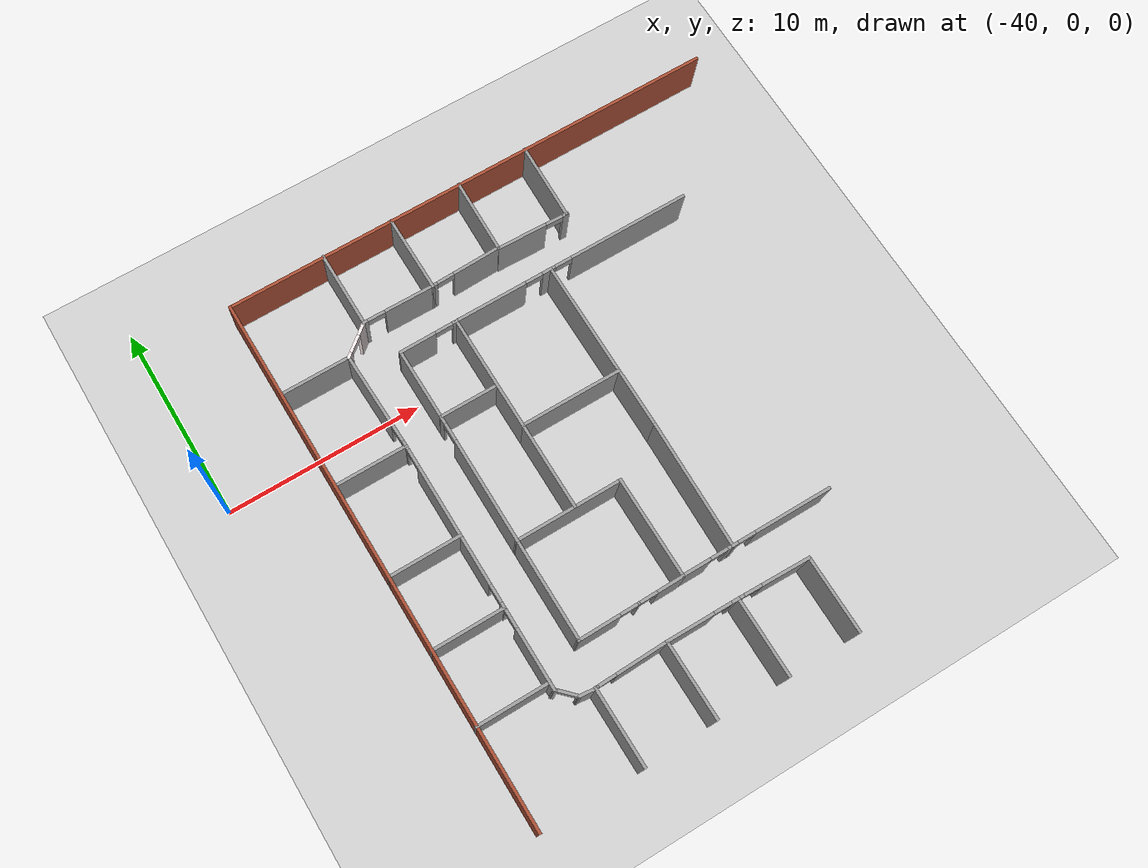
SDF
<sdf version="1.7">
 <world name="default">
  <model name="ground_plane">
   <static>1</static>
   <link name="link">
    <collision name="collision">
     <geometry><plane><normal>0 0 1</normal><size>100 100</size></plane></geometry>
     <surface>
      <contact><collide_bitmask>65535</collide_bitmask></contact>
      <friction><ode><mu>100</mu><mu2>50</mu2></ode></friction>
     </surface>
    </collision>
    <visual name="visual">
     <cast_shadows>0</cast_shadows>
     <geometry><plane><normal>0 0 1</normal><size>100 100</size></plane></geometry>
     <material>
      <script><uri>file://media/materials/scripts/gazebo.material</uri><name>Gazebo/Grey</name></script>
     </material>
    </visual>
   </link>
  </model>
  <model name="OEC_2F_B">
   <pose>0.733156 -0.285133 0 0 -0 0</pose>
   <link name="Wall_102">
    <pose>-22.0485 4.31707 0 0 -0 3.11269</pose>
    <visual name="Wall_102_Visual_0">
     <pose>-1.73863 0 1.25 0 -0 0</pose>
     <geometry><box><size>0.333949 0.15 2.5</size></box></geometry>
     <material>
      <script><uri>file://media/materials/scripts/gazebo.material</uri><name>Gazebo/Grey</name></script>
      <ambient>1 1 1 1</ambient>
     </material>
     <meta><layer>0</layer></meta>
    </visual>
    <collision name="Wall_102_Collision_0">
     <geometry><box><size>0.333949 0.15 2.5</size></box></geometry>
     <pose>-1.73863 0 1.25 0 -0 0</pose>
    </collision>
    <visual name="Wall_102_Visual_1">
     <pose>0.616975 0 1.25 0 -0 0</pose>
     <geometry><box><size>2.57727 0.15 2.5</size></box></geometry>
     <material>
      <script><uri>file://media/materials/scripts/gazebo.material</uri><name>Gazebo/Grey</name></script>
      <ambient>1 1 1 1</ambient>
     </material>
     <meta><layer>0</layer></meta>
    </visual>
    <collision name="Wall_102_Collision_1">
     <geometry><box><size>2.57727 0.15 2.5</size></box></geometry>
     <pose>0.616975 0 1.25 0 -0 0</pose>
    </collision>
    <visual name="Wall_102_Visual_2">
     <pose>-1.12166 0 2.25 0 -0 0</pose>
     <geometry><box><size>0.9 0.15 0.5</size></box></geometry>
     <material>
      <script><uri>file://media/materials/scripts/gazebo.material</uri><name>Gazebo/Grey</name></script>
      <ambient>1 1 1 1</ambient>
     </material>
     <meta><layer>0</layer></meta>
    </visual>
    <collision name="Wall_102_Collision_2">
     <geometry><box><size>0.9 0.15 0.5</size></box></geometry>
     <pose>-1.12166 0 2.25 0 -0 0</pose>
    </collision>
   </link>
   <link name="Wall_104">
    <pose>-25.7323 4.36122 0 0 -0 -3.11102</pose>
    <visual name="Wall_104_Visual_0">
     <pose>-0.610442 0 1.25 0 -0 0</pose>
     <geometry><box><size>2.54565 0.15 2.5</size></box></geometry>
     <material>
      <script><uri>file://media/materials/scripts/gazebo.material</uri><name>Gazebo/Grey</name></script>
      <ambient>1 1 1 1</ambient>
     </material>
     <meta><layer>0</layer></meta>
    </visual>
    <collision name="Wall_104_Collision_0">
     <geometry><box><size>2.54565 0.15 2.5</size></box></geometry>
     <pose>-0.610442 0 1.25 0 -0 0</pose>
    </collision>
    <visual name="Wall_104_Visual_1">
     <pose>1.72283 0 1.25 0 -0 0</pose>
     <geometry><box><size>0.320884 0.15 2.5</size></box></geometry>
     <material>
      <script><uri>file://media/materials/scripts/gazebo.material</uri><name>Gazebo/Grey</name></script>
      <ambient>1 1 1 1</ambient>
     </material>
     <meta><layer>0</layer></meta>
    </visual>
    <collision name="Wall_104_Collision_1">
     <geometry><box><size>0.320884 0.15 2.5</size></box></geometry>
     <pose>1.72283 0 1.25 0 -0 0</pose>
    </collision>
    <visual name="Wall_104_Visual_2">
     <pose>1.11238 0 2.25 0 -0 0</pose>
     <geometry><box><size>0.9 0.15 0.5</size></box></geometry>
     <material>
      <script><uri>file://media/materials/scripts/gazebo.material</uri><name>Gazebo/Grey</name></script>
      <ambient>1 1 1 1</ambient>
     </material>
     <meta><layer>0</layer></meta>
    </visual>
    <collision name="Wall_104_Collision_2">
     <geometry><box><size>0.9 0.15 0.5</size></box></geometry>
     <pose>1.11238 0 2.25 0 -0 0</pose>
    </collision>
   </link>
   <link name="Wall_105">
    <pose>-29.3587 4.32345 0 0 -0 3.13198</pose>
    <visual name="Wall_105_Visual_0">
     <pose>-0.586662 0 1.25 0 -0 0</pose>
     <geometry><box><size>2.61478 0.15 2.5</size></box></geometry>
     <material>
      <script><uri>file://media/materials/scripts/gazebo.material</uri><name>Gazebo/Grey</name></script>
      <ambient>1 1 1 1</ambient>
     </material>
     <meta><layer>0</layer></meta>
    </visual>
    <collision name="Wall_105_Collision_0">
     <geometry><box><size>2.61478 0.15 2.5</size></box></geometry>
     <pose>-0.586662 0 1.25 0 -0 0</pose>
    </collision>
    <visual name="Wall_105_Visual_1">
     <pose>1.75739 0 1.25 0 -0 0</pose>
     <geometry><box><size>0.273323 0.15 2.5</size></box></geometry>
     <material>
      <script><uri>file://media/materials/scripts/gazebo.material</uri><name>Gazebo/Grey</name></script>
      <ambient>1 1 1 1</ambient>
     </material>
     <meta><layer>0</layer></meta>
    </visual>
    <collision name="Wall_105_Collision_1">
     <geometry><box><size>0.273323 0.15 2.5</size></box></geometry>
     <pose>1.75739 0 1.25 0 -0 0</pose>
    </collision>
    <visual name="Wall_105_Visual_2">
     <pose>1.17073 0 2.25 0 -0 0</pose>
     <geometry><box><size>0.9 0.15 0.5</size></box></geometry>
     <material>
      <script><uri>file://media/materials/scripts/gazebo.material</uri><name>Gazebo/Grey</name></script>
      <ambient>1 1 1 1</ambient>
     </material>
     <meta><layer>0</layer></meta>
    </visual>
    <collision name="Wall_105_Collision_2">
     <geometry><box><size>0.9 0.15 0.5</size></box></geometry>
     <pose>1.17073 0 2.25 0 -0 0</pose>
    </collision>
   </link>
   <link name="Wall_107">
    <pose>-31.8931 3.77384 0 0 -0 -2.47133</pose>
    <visual name="Wall_107_Visual_0">
     <pose>-0.62608 0 1.25 0 -0 0</pose>
     <geometry><box><size>0.723685 0.15 2.5</size></box></geometry>
     <material>
      <script><uri>file://media/materials/scripts/gazebo.material</uri><name>Gazebo/Grey</name></script>
      <ambient>0.960784 0.905882 0.905882 1</ambient>
     </material>
     <meta><layer>0</layer></meta>
    </visual>
    <collision name="Wall_107_Collision_0">
     <geometry><box><size>0.723685 0.15 2.5</size></box></geometry>
     <pose>-0.62608 0 1.25 0 -0 0</pose>
    </collision>
    <visual name="Wall_107_Visual_1">
     <pose>0.811843 0 1.25 0 -0 0</pose>
     <geometry><box><size>0.352159 0.15 2.5</size></box></geometry>
     <material>
      <script><uri>file://media/materials/scripts/gazebo.material</uri><name>Gazebo/Grey</name></script>
      <ambient>0.960784 0.905882 0.905882 1</ambient>
     </material>
     <meta><layer>0</layer></meta>
    </visual>
    <collision name="Wall_107_Collision_1">
     <geometry><box><size>0.352159 0.15 2.5</size></box></geometry>
     <pose>0.811843 0 1.25 0 -0 0</pose>
    </collision>
    <visual name="Wall_107_Visual_2">
     <pose>0.185763 0 2.25 0 -0 0</pose>
     <geometry><box><size>0.9 0.15 0.5</size></box></geometry>
     <material>
      <script><uri>file://media/materials/scripts/gazebo.material</uri><name>Gazebo/Grey</name></script>
      <ambient>0.960784 0.905882 0.905882 1</ambient>
     </material>
     <meta><layer>0</layer></meta>
    </visual>
    <collision name="Wall_107_Collision_2">
     <geometry><box><size>0.9 0.15 0.5</size></box></geometry>
     <pose>0.185763 0 2.25 0 -0 0</pose>
    </collision>
   </link>
   <link name="Wall_111">
    <pose>-18.7093 2.23651 0 0 -0 3.14159</pose>
    <visual name="Wall_111_Visual_0">
     <pose>-0.604339 0 1.25 0 -0 0</pose>
     <geometry><box><size>6.29132 0.15 2.5</size></box></geometry>
     <material>
      <script><uri>file://media/materials/scripts/gazebo.material</uri><name>Gazebo/Grey</name></script>
      <ambient>1 1 1 1</ambient>
     </material>
     <meta><layer>0</layer></meta>
    </visual>
    <collision name="Wall_111_Collision_0">
     <geometry><box><size>6.29132 0.15 2.5</size></box></geometry>
     <pose>-0.604339 0 1.25 0 -0 0</pose>
    </collision>
    <visual name="Wall_111_Visual_1">
     <pose>3.59566 0 1.25 0 -0 0</pose>
     <geometry><box><size>0.308678 0.15 2.5</size></box></geometry>
     <material>
      <script><uri>file://media/materials/scripts/gazebo.material</uri><name>Gazebo/Grey</name></script>
      <ambient>1 1 1 1</ambient>
     </material>
     <meta><layer>0</layer></meta>
    </visual>
    <collision name="Wall_111_Collision_1">
     <geometry><box><size>0.308678 0.15 2.5</size></box></geometry>
     <pose>3.59566 0 1.25 0 -0 0</pose>
    </collision>
    <visual name="Wall_111_Visual_2">
     <pose>2.99132 0 2.25 0 -0 0</pose>
     <geometry><box><size>0.9 0.15 0.5</size></box></geometry>
     <material>
      <script><uri>file://media/materials/scripts/gazebo.material</uri><name>Gazebo/Grey</name></script>
      <ambient>1 1 1 1</ambient>
     </material>
     <meta><layer>0</layer></meta>
    </visual>
    <collision name="Wall_111_Collision_2">
     <geometry><box><size>0.9 0.15 0.5</size></box></geometry>
     <pose>2.99132 0 2.25 0 -0 0</pose>
    </collision>
   </link>
   <link name="Wall_113">
    <pose>-24.9343 2.23651 0 0 -0 3.14159</pose>
    <visual name="Wall_113_Visual_0">
     <pose>-2.35854 0 1.25 0 -0 0</pose>
     <geometry><box><size>0.532918 0.15 2.5</size></box></geometry>
     <material>
      <script><uri>file://media/materials/scripts/gazebo.material</uri><name>Gazebo/Grey</name></script>
      <ambient>1 1 1 1</ambient>
     </material>
     <meta><layer>0</layer></meta>
    </visual>
    <collision name="Wall_113_Collision_0">
     <geometry><box><size>0.532918 0.15 2.5</size></box></geometry>
     <pose>-2.35854 0 1.25 0 -0 0</pose>
    </collision>
    <visual name="Wall_113_Visual_1">
     <pose>0.716459 0 1.25 0 -0 0</pose>
     <geometry><box><size>3.81708 0.15 2.5</size></box></geometry>
     <material>
      <script><uri>file://media/materials/scripts/gazebo.material</uri><name>Gazebo/Grey</name></script>
      <ambient>1 1 1 1</ambient>
     </material>
     <meta><layer>0</layer></meta>
    </visual>
    <collision name="Wall_113_Collision_1">
     <geometry><box><size>3.81708 0.15 2.5</size></box></geometry>
     <pose>0.716459 0 1.25 0 -0 0</pose>
    </collision>
    <visual name="Wall_113_Visual_2">
     <pose>-1.64208 0 2.25 0 -0 0</pose>
     <geometry><box><size>0.9 0.15 0.5</size></box></geometry>
     <material>
      <script><uri>file://media/materials/scripts/gazebo.material</uri><name>Gazebo/Grey</name></script>
      <ambient>1 1 1 1</ambient>
     </material>
     <meta><layer>0</layer></meta>
    </visual>
    <collision name="Wall_113_Collision_2">
     <geometry><box><size>0.9 0.15 0.5</size></box></geometry>
     <pose>-1.64208 0 2.25 0 -0 0</pose>
    </collision>
   </link>
   <link name="Wall_115">
    <pose>-28.9692 2.22462 0 0 -0 -3.13359</pose>
    <visual name="Wall_115_Visual_0">
     <pose>-1.41288 0 1.25 0 -0 0</pose>
     <geometry><box><size>0.294093 0.15 2.5</size></box></geometry>
     <material>
      <script><uri>file://media/materials/scripts/gazebo.material</uri><name>Gazebo/Grey</name></script>
      <ambient>1 1 1 1</ambient>
     </material>
     <meta><layer>0</layer></meta>
    </visual>
    <collision name="Wall_115_Collision_0">
     <geometry><box><size>0.294093 0.15 2.5</size></box></geometry>
     <pose>-1.41288 0 1.25 0 -0 0</pose>
    </collision>
    <visual name="Wall_115_Visual_1">
     <pose>0.597047 0 1.25 0 -0 0</pose>
     <geometry><box><size>1.92576 0.15 2.5</size></box></geometry>
     <material>
      <script><uri>file://media/materials/scripts/gazebo.material</uri><name>Gazebo/Grey</name></script>
      <ambient>1 1 1 1</ambient>
     </material>
     <meta><layer>0</layer></meta>
    </visual>
    <collision name="Wall_115_Collision_1">
     <geometry><box><size>1.92576 0.15 2.5</size></box></geometry>
     <pose>0.597047 0 1.25 0 -0 0</pose>
    </collision>
    <visual name="Wall_115_Visual_2">
     <pose>-0.815835 0 2.25 0 -0 0</pose>
     <geometry><box><size>0.9 0.15 0.5</size></box></geometry>
     <material>
      <script><uri>file://media/materials/scripts/gazebo.material</uri><name>Gazebo/Grey</name></script>
      <ambient>1 1 1 1</ambient>
     </material>
     <meta><layer>0</layer></meta>
    </visual>
    <collision name="Wall_115_Collision_2">
     <geometry><box><size>0.9 0.15 0.5</size></box></geometry>
     <pose>-0.815835 0 2.25 0 -0 0</pose>
    </collision>
   </link>
   <link name="Wall_122">
    <collision name="Wall_122_Collision">
     <geometry><box><size>9 0.15 2.5</size></box></geometry>
     <pose>0 0 1.25 0 -0 0</pose>
    </collision>
    <visual name="Wall_122_Visual">
     <pose>0 0 1.25 0 -0 0</pose>
     <geometry><box><size>9 0.15 2.5</size></box></geometry>
     <material>
      <script><uri>file://media/materials/scripts/gazebo.material</uri><name>Gazebo/Grey</name></script>
      <ambient>1 1 1 1</ambient>
     </material>
     <meta><layer>0</layer></meta>
    </visual>
    <pose>-22.3843 -2.1885 0 0 -0 -1.5708</pose>
   </link>
   <link name="Wall_124">
    <collision name="Wall_124_Collision">
     <geometry><box><size>6 0.15 2.5</size></box></geometry>
     <pose>0 0 1.25 0 -0 0</pose>
    </collision>
    <visual name="Wall_124_Visual">
     <pose>0 0 1.25 0 -0 0</pose>
     <geometry><box><size>6 0.15 2.5</size></box></geometry>
     <material>
      <script><uri>file://media/materials/scripts/gazebo.material</uri><name>Gazebo/Grey</name></script>
      <ambient>1 1 1 1</ambient>
     </material>
     <meta><layer>0</layer></meta>
    </visual>
    <pose>-27.4843 -0.688495 0 0 -0 -1.5708</pose>
   </link>
   <link name="Wall_130">
    <collision name="Wall_130_Collision">
     <geometry><box><size>5.25 0.15 2.5</size></box></geometry>
     <pose>0 0 1.25 0 -0 0</pose>
    </collision>
    <visual name="Wall_130_Visual">
     <pose>0 0 1.25 0 -0 0</pose>
     <geometry><box><size>5.25 0.15 2.5</size></box></geometry>
     <material>
      <script><uri>file://media/materials/scripts/gazebo.material</uri><name>Gazebo/Grey</name></script>
      <ambient>1 1 1 1</ambient>
     </material>
     <meta><layer>0</layer></meta>
    </visual>
    <pose>-24.9343 -3.61349 0 0 -0 0</pose>
   </link>
   <link name="Wall_132">
    <pose>-32.5386 0.717956 0 0 -0 -1.54269</pose>
    <visual name="Wall_132_Visual_0">
     <pose>-0.617333 0 1.25 0 -0 0</pose>
     <geometry><box><size>3.89487 0.15 2.5</size></box></geometry>
     <material>
      <script><uri>file://media/materials/scripts/gazebo.material</uri><name>Gazebo/Grey</name></script>
      <ambient>1 1 1 1</ambient>
     </material>
     <meta><layer>0</layer></meta>
    </visual>
    <collision name="Wall_132_Collision_0">
     <geometry><box><size>3.89487 0.15 2.5</size></box></geometry>
     <pose>-0.617333 0 1.25 0 -0 0</pose>
    </collision>
    <visual name="Wall_132_Visual_1">
     <pose>2.39744 0 1.25 0 -0 0</pose>
     <geometry><box><size>0.334666 0.15 2.5</size></box></geometry>
     <material>
      <script><uri>file://media/materials/scripts/gazebo.material</uri><name>Gazebo/Grey</name></script>
      <ambient>1 1 1 1</ambient>
     </material>
     <meta><layer>0</layer></meta>
    </visual>
    <collision name="Wall_132_Collision_1">
     <geometry><box><size>0.334666 0.15 2.5</size></box></geometry>
     <pose>2.39744 0 1.25 0 -0 0</pose>
    </collision>
    <visual name="Wall_132_Visual_2">
     <pose>1.7801 0 2.25 0 -0 0</pose>
     <geometry><box><size>0.9 0.15 0.5</size></box></geometry>
     <material>
      <script><uri>file://media/materials/scripts/gazebo.material</uri><name>Gazebo/Grey</name></script>
      <ambient>1 1 1 1</ambient>
     </material>
     <meta><layer>0</layer></meta>
    </visual>
    <collision name="Wall_132_Collision_2">
     <geometry><box><size>0.9 0.15 0.5</size></box></geometry>
     <pose>1.7801 0 2.25 0 -0 0</pose>
    </collision>
   </link>
   <link name="Wall_134">
    <pose>-32.4686 -4.16702 0 0 -0 -1.5708</pose>
    <visual name="Wall_134_Visual_0">
     <pose>-2.33578 0 1.25 0 -0 0</pose>
     <geometry><box><size>0.270827 0.15 2.5</size></box></geometry>
     <material>
      <script><uri>file://media/materials/scripts/gazebo.material</uri><name>Gazebo/Grey</name></script>
      <ambient>1 1 1 1</ambient>
     </material>
     <meta><layer>0</layer></meta>
    </visual>
    <collision name="Wall_134_Collision_0">
     <geometry><box><size>0.270827 0.15 2.5</size></box></geometry>
     <pose>-2.33578 0 1.25 0 -0 0</pose>
    </collision>
    <visual name="Wall_134_Visual_1">
     <pose>0.585414 0 1.25 0 -0 0</pose>
     <geometry><box><size>3.77156 0.15 2.5</size></box></geometry>
     <material>
      <script><uri>file://media/materials/scripts/gazebo.material</uri><name>Gazebo/Grey</name></script>
      <ambient>1 1 1 1</ambient>
     </material>
     <meta><layer>0</layer></meta>
    </visual>
    <collision name="Wall_134_Collision_1">
     <geometry><box><size>3.77156 0.15 2.5</size></box></geometry>
     <pose>0.585414 0 1.25 0 -0 0</pose>
    </collision>
    <visual name="Wall_134_Visual_2">
     <pose>-1.75037 0 2.25 0 -0 0</pose>
     <geometry><box><size>0.9 0.15 0.5</size></box></geometry>
     <material>
      <script><uri>file://media/materials/scripts/gazebo.material</uri><name>Gazebo/Grey</name></script>
      <ambient>1 1 1 1</ambient>
     </material>
     <meta><layer>0</layer></meta>
    </visual>
    <collision name="Wall_134_Collision_2">
     <geometry><box><size>0.9 0.15 0.5</size></box></geometry>
     <pose>-1.75037 0 2.25 0 -0 0</pose>
    </collision>
   </link>
   <link name="Wall_135">
    <pose>-32.4686 -8.39202 0 0 -0 -1.5708</pose>
    <visual name="Wall_135_Visual_0">
     <pose>-0.617157 0 1.25 0 -0 0</pose>
     <geometry><box><size>2.5733 0.15 2.5</size></box></geometry>
     <material>
      <script><uri>file://media/materials/scripts/gazebo.material</uri><name>Gazebo/Grey</name></script>
      <ambient>1 1 1 1</ambient>
     </material>
     <meta><layer>0</layer></meta>
    </visual>
    <collision name="Wall_135_Collision_0">
     <geometry><box><size>2.5733 0.15 2.5</size></box></geometry>
     <pose>-0.617157 0 1.25 0 -0 0</pose>
    </collision>
    <visual name="Wall_135_Visual_1">
     <pose>1.73665 0 1.25 0 -0 0</pose>
     <geometry><box><size>0.334313 0.15 2.5</size></box></geometry>
     <material>
      <script><uri>file://media/materials/scripts/gazebo.material</uri><name>Gazebo/Grey</name></script>
      <ambient>1 1 1 1</ambient>
     </material>
     <meta><layer>0</layer></meta>
    </visual>
    <collision name="Wall_135_Collision_1">
     <geometry><box><size>0.334313 0.15 2.5</size></box></geometry>
     <pose>1.73665 0 1.25 0 -0 0</pose>
    </collision>
    <visual name="Wall_135_Visual_2">
     <pose>1.11949 0 2.25 0 -0 0</pose>
     <geometry><box><size>0.9 0.15 0.5</size></box></geometry>
     <material>
      <script><uri>file://media/materials/scripts/gazebo.material</uri><name>Gazebo/Grey</name></script>
      <ambient>1 1 1 1</ambient>
     </material>
     <meta><layer>0</layer></meta>
    </visual>
    <collision name="Wall_135_Collision_2">
     <geometry><box><size>0.9 0.15 0.5</size></box></geometry>
     <pose>1.11949 0 2.25 0 -0 0</pose>
    </collision>
   </link>
   <link name="Wall_137">
    <pose>-32.4686 -12.2458 0 0 -0 -1.5708</pose>
    <visual name="Wall_137_Visual_0">
     <pose>-2.00493 0 1.25 0 -0 0</pose>
     <geometry><box><size>0.190132 0.15 2.5</size></box></geometry>
     <material>
      <script><uri>file://media/materials/scripts/gazebo.material</uri><name>Gazebo/Grey</name></script>
      <ambient>1 1 1 1</ambient>
     </material>
     <meta><layer>0</layer></meta>
    </visual>
    <collision name="Wall_137_Collision_0">
     <geometry><box><size>0.190132 0.15 2.5</size></box></geometry>
     <pose>-2.00493 0 1.25 0 -0 0</pose>
    </collision>
    <visual name="Wall_137_Visual_1">
     <pose>0.545066 0 1.25 0 -0 0</pose>
     <geometry><box><size>3.10987 0.15 2.5</size></box></geometry>
     <material>
      <script><uri>file://media/materials/scripts/gazebo.material</uri><name>Gazebo/Grey</name></script>
      <ambient>1 1 1 1</ambient>
     </material>
     <meta><layer>0</layer></meta>
    </visual>
    <collision name="Wall_137_Collision_1">
     <geometry><box><size>3.10987 0.15 2.5</size></box></geometry>
     <pose>0.545066 0 1.25 0 -0 0</pose>
    </collision>
    <visual name="Wall_137_Visual_2">
     <pose>-1.45987 0 2.25 0 -0 0</pose>
     <geometry><box><size>0.9 0.15 0.5</size></box></geometry>
     <material>
      <script><uri>file://media/materials/scripts/gazebo.material</uri><name>Gazebo/Grey</name></script>
      <ambient>1 1 1 1</ambient>
     </material>
     <meta><layer>0</layer></meta>
    </visual>
    <collision name="Wall_137_Collision_2">
     <geometry><box><size>0.9 0.15 0.5</size></box></geometry>
     <pose>-1.45987 0 2.25 0 -0 0</pose>
    </collision>
   </link>
   <link name="Wall_139">
    <collision name="Wall_139_Collision">
     <geometry><box><size>3.5 0.15 2.5</size></box></geometry>
     <pose>0 0 1.25 0 -0 0</pose>
    </collision>
    <visual name="Wall_139_Visual">
     <pose>0 0 1.25 0 -0 0</pose>
     <geometry><box><size>3.5 0.15 2.5</size></box></geometry>
     <material>
      <script><uri>file://media/materials/scripts/gazebo.material</uri><name>Gazebo/Grey</name></script>
      <ambient>1 1 1 1</ambient>
     </material>
     <meta><layer>0</layer></meta>
    </visual>
    <pose>-34.2835 3.20674 0 0 -0 3.14159</pose>
   </link>
   <link name="Wall_141">
    <collision name="Wall_141_Collision">
     <geometry><box><size>3.75 0.15 2.5</size></box></geometry>
     <pose>0 0 1.25 0 -0 0</pose>
    </collision>
    <visual name="Wall_141_Visual">
     <pose>0 0 1.25 0 -0 0</pose>
     <geometry><box><size>3.75 0.15 2.5</size></box></geometry>
     <material>
      <script><uri>file://media/materials/scripts/gazebo.material</uri><name>Gazebo/Grey</name></script>
      <ambient>1 1 1 1</ambient>
     </material>
     <meta><layer>0</layer></meta>
    </visual>
    <pose>-34.2686 -1.77083 0 0 -0 3.14159</pose>
   </link>
   <link name="Wall_143">
    <collision name="Wall_143_Collision">
     <geometry><box><size>3.75 0.15 2.5</size></box></geometry>
     <pose>0 0 1.25 0 -0 0</pose>
    </collision>
    <visual name="Wall_143_Visual">
     <pose>0 0 1.25 0 -0 0</pose>
     <geometry><box><size>3.75 0.15 2.5</size></box></geometry>
     <material>
      <script><uri>file://media/materials/scripts/gazebo.material</uri><name>Gazebo/Grey</name></script>
      <ambient>1 1 1 1</ambient>
     </material>
     <meta><layer>0</layer></meta>
    </visual>
    <pose>-34.2686 -6.52824 0 0 -0 3.14159</pose>
   </link>
   <link name="Wall_145">
    <collision name="Wall_145_Collision">
     <geometry><box><size>3.75 0.15 2.5</size></box></geometry>
     <pose>0 0 1.25 0 -0 0</pose>
    </collision>
    <visual name="Wall_145_Visual">
     <pose>0 0 1.25 0 -0 0</pose>
     <geometry><box><size>3.75 0.15 2.5</size></box></geometry>
     <material>
      <script><uri>file://media/materials/scripts/gazebo.material</uri><name>Gazebo/Grey</name></script>
      <ambient>1 1 1 1</ambient>
     </material>
     <meta><layer>0</layer></meta>
    </visual>
    <pose>-34.2686 -10.2208 0 0 -0 3.14159</pose>
   </link>
   <link name="Wall_148">
    <collision name="Wall_148_Collision">
     <geometry><box><size>3.75 0.15 2.5</size></box></geometry>
     <pose>0 0 1.25 0 -0 0</pose>
    </collision>
    <visual name="Wall_148_Visual">
     <pose>0 0 1.25 0 -0 0</pose>
     <geometry><box><size>3.75 0.15 2.5</size></box></geometry>
     <material>
      <script><uri>file://media/materials/scripts/gazebo.material</uri><name>Gazebo/Grey</name></script>
      <ambient>1 1 1 1</ambient>
     </material>
     <meta><layer>0</layer></meta>
    </visual>
    <pose>-34.257 -13.9167 0 0 -0 3.14159</pose>
   </link>
   <link name="Wall_150">
    <collision name="Wall_150_Collision">
     <geometry><box><size>3.75 0.15 2.5</size></box></geometry>
     <pose>0 0 1.25 0 -0 0</pose>
    </collision>
    <visual name="Wall_150_Visual">
     <pose>0 0 1.25 0 -0 0</pose>
     <geometry><box><size>3.75 0.15 2.5</size></box></geometry>
     <material>
      <script><uri>file://media/materials/scripts/gazebo.material</uri><name>Gazebo/Grey</name></script>
      <ambient>1 1 1 1</ambient>
     </material>
     <meta><layer>0</layer></meta>
    </visual>
    <pose>-30.4453 0.412732 0 0 -0 -1.56594</pose>
   </link>
   <link name="Wall_151">
    <pose>-30.4453 -4.68727 0 0 -0 -1.57345</pose>
    <visual name="Wall_151_Visual_0">
     <pose>-3.14822 0 1.25 0 -0 0</pose>
     <geometry><box><size>0.453553 0.15 2.5</size></box></geometry>
     <material>
      <script><uri>file://media/materials/scripts/gazebo.material</uri><name>Gazebo/Grey</name></script>
      <ambient>1 1 1 1</ambient>
     </material>
     <meta><layer>0</layer></meta>
    </visual>
    <collision name="Wall_151_Collision_0">
     <geometry><box><size>0.453553 0.15 2.5</size></box></geometry>
     <pose>-3.14822 0 1.25 0 -0 0</pose>
    </collision>
    <visual name="Wall_151_Visual_1">
     <pose>0.676776 0 1.25 0 -0 0</pose>
     <geometry><box><size>5.39645 0.15 2.5</size></box></geometry>
     <material>
      <script><uri>file://media/materials/scripts/gazebo.material</uri><name>Gazebo/Grey</name></script>
      <ambient>1 1 1 1</ambient>
     </material>
     <meta><layer>0</layer></meta>
    </visual>
    <collision name="Wall_151_Collision_1">
     <geometry><box><size>5.39645 0.15 2.5</size></box></geometry>
     <pose>0.676776 0 1.25 0 -0 0</pose>
    </collision>
    <visual name="Wall_151_Visual_2">
     <pose>-2.47145 0 2.25 0 -0 0</pose>
     <geometry><box><size>0.9 0.15 0.5</size></box></geometry>
     <material>
      <script><uri>file://media/materials/scripts/gazebo.material</uri><name>Gazebo/Grey</name></script>
      <ambient>1 1 1 1</ambient>
     </material>
     <meta><layer>0</layer></meta>
    </visual>
    <collision name="Wall_151_Collision_2">
     <geometry><box><size>0.9 0.15 0.5</size></box></geometry>
     <pose>-2.47145 0 2.25 0 -0 0</pose>
    </collision>
   </link>
   <link name="Wall_153">
    <collision name="Wall_153_Collision">
     <geometry><box><size>5.19506 0.15 2.5</size></box></geometry>
     <pose>0 0 1.25 0 -0 0</pose>
    </collision>
    <visual name="Wall_153_Visual">
     <pose>0 0 1.25 0 -0 0</pose>
     <geometry><box><size>5.19506 0.15 2.5</size></box></geometry>
     <material>
      <script><uri>file://media/materials/scripts/gazebo.material</uri><name>Gazebo/Grey</name></script>
      <ambient>1 1 1 1</ambient>
     </material>
     <meta><layer>0</layer></meta>
    </visual>
    <pose>-30.4541 -10.5098 0 0 -0 -1.5708</pose>
   </link>
   <link name="Wall_155">
    <collision name="Wall_155_Collision">
     <geometry><box><size>3 0.15 2.5</size></box></geometry>
     <pose>0 0 1.25 0 -0 0</pose>
    </collision>
    <visual name="Wall_155_Visual">
     <pose>0 0 1.25 0 -0 0</pose>
     <geometry><box><size>3 0.15 2.5</size></box></geometry>
     <material>
      <script><uri>file://media/materials/scripts/gazebo.material</uri><name>Gazebo/Grey</name></script>
      <ambient>1 1 1 1</ambient>
     </material>
     <meta><layer>0</layer></meta>
    </visual>
    <pose>-29.0116 -1.38727 0 0 -0 0</pose>
   </link>
   <link name="Wall_157">
    <collision name="Wall_157_Collision">
     <geometry><box><size>5.5 0.15 2.5</size></box></geometry>
     <pose>0 0 1.25 0 -0 0</pose>
    </collision>
    <visual name="Wall_157_Visual">
     <pose>0 0 1.25 0 -0 0</pose>
     <geometry><box><size>5.5 0.15 2.5</size></box></geometry>
     <material>
      <script><uri>file://media/materials/scripts/gazebo.material</uri><name>Gazebo/Grey</name></script>
      <ambient>1 1 1 1</ambient>
     </material>
     <meta><layer>0</layer></meta>
    </visual>
    <pose>-27.7791 -7.98727 0 0 -0 0</pose>
   </link>
   <link name="Wall_159">
    <collision name="Wall_159_Collision">
     <geometry><box><size>5.14506 0.15 2.5</size></box></geometry>
     <pose>0 0 1.25 0 -0 0</pose>
    </collision>
    <visual name="Wall_159_Visual">
     <pose>0 0 1.25 0 -0 0</pose>
     <geometry><box><size>5.14506 0.15 2.5</size></box></geometry>
     <material>
      <script><uri>file://media/materials/scripts/gazebo.material</uri><name>Gazebo/Grey</name></script>
      <ambient>1 1 1 1</ambient>
     </material>
     <meta><layer>0</layer></meta>
    </visual>
    <pose>-25.1041 -10.4848 0 0 -0 -1.5708</pose>
   </link>
   <link name="Wall_161">
    <collision name="Wall_161_Collision">
     <geometry><box><size>4.5 0.15 2.5</size></box></geometry>
     <pose>0 0 1.25 0 -0 0</pose>
    </collision>
    <visual name="Wall_161_Visual">
     <pose>0 0 1.25 0 -0 0</pose>
     <geometry><box><size>4.5 0.15 2.5</size></box></geometry>
     <material>
      <script><uri>file://media/materials/scripts/gazebo.material</uri><name>Gazebo/Grey</name></script>
      <ambient>1 1 1 1</ambient>
     </material>
     <meta><layer>0</layer></meta>
    </visual>
    <pose>-27.4843 -5.7885 0 0 -0 -1.5708</pose>
   </link>
   <link name="Wall_164">
    <collision name="Wall_164_Collision">
     <geometry><box><size>6.51996 0.15 2.5</size></box></geometry>
     <pose>0 0 1.25 0 -0 0</pose>
    </collision>
    <visual name="Wall_164_Visual">
     <pose>0 0 1.25 0 -0 0</pose>
     <geometry><box><size>6.51996 0.15 2.5</size></box></geometry>
     <material>
      <script><uri>file://media/materials/scripts/gazebo.material</uri><name>Gazebo/Grey</name></script>
      <ambient>1 1 1 1</ambient>
     </material>
     <meta><layer>0</layer></meta>
    </visual>
    <pose>-22.4442 -9.79791 0 0 -0 -1.5896</pose>
   </link>
   <link name="Wall_165">
    <pose>-23.8041 -12.9823 0 0 -0 3.14159</pose>
    <visual name="Wall_165_Visual_0">
     <pose>-1.21215 0 1.25 0 -0 0</pose>
     <geometry><box><size>0.325703 0.15 2.5</size></box></geometry>
     <material>
      <script><uri>file://media/materials/scripts/gazebo.material</uri><name>Gazebo/Grey</name></script>
      <ambient>1 1 1 1</ambient>
     </material>
     <meta><layer>0</layer></meta>
    </visual>
    <collision name="Wall_165_Collision_0">
     <geometry><box><size>0.325703 0.15 2.5</size></box></geometry>
     <pose>-1.21215 0 1.25 0 -0 0</pose>
    </collision>
    <visual name="Wall_165_Visual_1">
     <pose>0.612852 0 1.25 0 -0 0</pose>
     <geometry><box><size>1.5243 0.15 2.5</size></box></geometry>
     <material>
      <script><uri>file://media/materials/scripts/gazebo.material</uri><name>Gazebo/Grey</name></script>
      <ambient>1 1 1 1</ambient>
     </material>
     <meta><layer>0</layer></meta>
    </visual>
    <collision name="Wall_165_Collision_1">
     <geometry><box><size>1.5243 0.15 2.5</size></box></geometry>
     <pose>0.612852 0 1.25 0 -0 0</pose>
    </collision>
    <visual name="Wall_165_Visual_2">
     <pose>-0.599297 0 2.25 0 -0 0</pose>
     <geometry><box><size>0.9 0.15 0.5</size></box></geometry>
     <material>
      <script><uri>file://media/materials/scripts/gazebo.material</uri><name>Gazebo/Grey</name></script>
      <ambient>1 1 1 1</ambient>
     </material>
     <meta><layer>0</layer></meta>
    </visual>
    <collision name="Wall_165_Collision_2">
     <geometry><box><size>0.9 0.15 0.5</size></box></geometry>
     <pose>-0.599297 0 2.25 0 -0 0</pose>
    </collision>
   </link>
   <link name="Wall_166">
    <pose>-27.7791 -13.0248 0 0 -0 -3.13225</pose>
    <visual name="Wall_166_Visual_0">
     <pose>-2.04239 0 1.25 0 -0 0</pose>
     <geometry><box><size>1.41545 0.15 2.5</size></box></geometry>
     <material>
      <script><uri>file://media/materials/scripts/gazebo.material</uri><name>Gazebo/Grey</name></script>
      <ambient>1 1 1 1</ambient>
     </material>
     <meta><layer>0</layer></meta>
    </visual>
    <collision name="Wall_166_Collision_0">
     <geometry><box><size>1.41545 0.15 2.5</size></box></geometry>
     <pose>-2.04239 0 1.25 0 -0 0</pose>
    </collision>
    <visual name="Wall_166_Visual_1">
     <pose>-0.386389 0 1.25 0 -0 0</pose>
     <geometry><box><size>0.096563 0.15 2.5</size></box></geometry>
     <material>
      <script><uri>file://media/materials/scripts/gazebo.material</uri><name>Gazebo/Grey</name></script>
      <ambient>1 1 1 1</ambient>
     </material>
     <meta><layer>0</layer></meta>
    </visual>
    <collision name="Wall_166_Collision_1">
     <geometry><box><size>0.096563 0.15 2.5</size></box></geometry>
     <pose>-0.386389 0 1.25 0 -0 0</pose>
    </collision>
    <visual name="Wall_166_Visual_2">
     <pose>1.656 0 1.25 0 -0 0</pose>
     <geometry><box><size>2.18823 0.15 2.5</size></box></geometry>
     <material>
      <script><uri>file://media/materials/scripts/gazebo.material</uri><name>Gazebo/Grey</name></script>
      <ambient>1 1 1 1</ambient>
     </material>
     <meta><layer>0</layer></meta>
    </visual>
    <collision name="Wall_166_Collision_2">
     <geometry><box><size>2.18823 0.15 2.5</size></box></geometry>
     <pose>1.656 0 1.25 0 -0 0</pose>
    </collision>
    <visual name="Wall_166_Visual_3">
     <pose>-0.884671 0 2.25 0 -0 0</pose>
     <geometry><box><size>0.9 0.15 0.5</size></box></geometry>
     <material>
      <script><uri>file://media/materials/scripts/gazebo.material</uri><name>Gazebo/Grey</name></script>
      <ambient>1 1 1 1</ambient>
     </material>
     <meta><layer>0</layer></meta>
    </visual>
    <collision name="Wall_166_Collision_3">
     <geometry><box><size>0.9 0.15 0.5</size></box></geometry>
     <pose>-0.884671 0 2.25 0 -0 0</pose>
    </collision>
    <visual name="Wall_166_Visual_4">
     <pose>0.111892 0 2.25 0 -0 0</pose>
     <geometry><box><size>0.9 0.15 0.5</size></box></geometry>
     <material>
      <script><uri>file://media/materials/scripts/gazebo.material</uri><name>Gazebo/Grey</name></script>
      <ambient>1 1 1 1</ambient>
     </material>
     <meta><layer>0</layer></meta>
    </visual>
    <collision name="Wall_166_Collision_4">
     <geometry><box><size>0.9 0.15 0.5</size></box></geometry>
     <pose>0.111892 0 2.25 0 -0 0</pose>
    </collision>
   </link>
   <link name="Wall_169">
    <pose>-19.9511 -12.9953 0 0 -0 3.13651</pose>
    <visual name="Wall_169_Visual_0">
     <pose>-0.629299 0 1.25 0 -0 0</pose>
     <geometry><box><size>3.99747 0.15 2.5</size></box></geometry>
     <material>
      <script><uri>file://media/materials/scripts/gazebo.material</uri><name>Gazebo/Grey</name></script>
      <ambient>1 1 1 1</ambient>
     </material>
     <meta><layer>0</layer></meta>
    </visual>
    <collision name="Wall_169_Collision_0">
     <geometry><box><size>3.99747 0.15 2.5</size></box></geometry>
     <pose>-0.629299 0 1.25 0 -0 0</pose>
    </collision>
    <visual name="Wall_169_Visual_1">
     <pose>2.44873 0 1.25 0 -0 0</pose>
     <geometry><box><size>0.358597 0.15 2.5</size></box></geometry>
     <material>
      <script><uri>file://media/materials/scripts/gazebo.material</uri><name>Gazebo/Grey</name></script>
      <ambient>1 1 1 1</ambient>
     </material>
     <meta><layer>0</layer></meta>
    </visual>
    <collision name="Wall_169_Collision_1">
     <geometry><box><size>0.358597 0.15 2.5</size></box></geometry>
     <pose>2.44873 0 1.25 0 -0 0</pose>
    </collision>
    <visual name="Wall_169_Visual_2">
     <pose>1.81943 0 2.25 0 -0 0</pose>
     <geometry><box><size>0.9 0.15 0.5</size></box></geometry>
     <material>
      <script><uri>file://media/materials/scripts/gazebo.material</uri><name>Gazebo/Grey</name></script>
      <ambient>1 1 1 1</ambient>
     </material>
     <meta><layer>0</layer></meta>
    </visual>
    <collision name="Wall_169_Collision_2">
     <geometry><box><size>0.9 0.15 0.5</size></box></geometry>
     <pose>1.81943 0 2.25 0 -0 0</pose>
    </collision>
   </link>
   <link name="Wall_179">
    <collision name="Wall_179_Collision">
     <geometry><box><size>3.93068 0.15 2.5</size></box></geometry>
     <pose>0 0 1.25 0 -0 0</pose>
    </collision>
    <visual name="Wall_179_Visual">
     <pose>0 0 1.25 0 -0 0</pose>
     <geometry><box><size>3.93068 0.15 2.5</size></box></geometry>
     <material>
      <script><uri>file://media/materials/scripts/gazebo.material</uri><name>Gazebo/Grey</name></script>
      <ambient>1 1 1 1</ambient>
     </material>
     <meta><layer>0</layer></meta>
    </visual>
    <pose>-30.9291 -17.0208 0 0 -0 1.57691</pose>
   </link>
   <link name="Wall_180">
    <collision name="Wall_180_Collision">
     <geometry><box><size>0.904606 0.15 2.5</size></box></geometry>
     <pose>0 0 1.25 0 -0 0</pose>
    </collision>
    <visual name="Wall_180_Visual">
     <pose>0 0 1.25 0 -0 0</pose>
     <geometry><box><size>0.904606 0.15 2.5</size></box></geometry>
     <material>
      <script><uri>file://media/materials/scripts/gazebo.material</uri><name>Gazebo/Grey</name></script>
      <ambient>1 1 1 1</ambient>
     </material>
     <meta><layer>0</layer></meta>
    </visual>
    <pose>-31.3157 -15.0896 0 0 -0 3.03295</pose>
   </link>
   <link name="Wall_182">
    <collision name="Wall_182_Collision">
     <geometry><box><size>3.93068 0.15 2.5</size></box></geometry>
     <pose>0 0 1.25 0 -0 0</pose>
    </collision>
    <visual name="Wall_182_Visual">
     <pose>0 0 1.25 0 -0 0</pose>
     <geometry><box><size>3.93068 0.15 2.5</size></box></geometry>
     <material>
      <script><uri>file://media/materials/scripts/gazebo.material</uri><name>Gazebo/Grey</name></script>
      <ambient>1 1 1 1</ambient>
     </material>
     <meta><layer>0</layer></meta>
    </visual>
    <pose>-27.2513 -16.9282 0 0 -0 1.57691</pose>
   </link>
   <link name="Wall_183">
    <pose>-29.1017 -15.0611 0 0 -0 -3.11644</pose>
    <visual name="Wall_183_Visual_0">
     <pose>-0.569377 0 1.25 0 -0 0</pose>
     <geometry><box><size>2.69018 0.15 2.5</size></box></geometry>
     <material>
      <script><uri>file://media/materials/scripts/gazebo.material</uri><name>Gazebo/Grey</name></script>
      <ambient>1 1 1 1</ambient>
     </material>
     <meta><layer>0</layer></meta>
    </visual>
    <collision name="Wall_183_Collision_0">
     <geometry><box><size>2.69018 0.15 2.5</size></box></geometry>
     <pose>-0.569377 0 1.25 0 -0 0</pose>
    </collision>
    <visual name="Wall_183_Visual_1">
     <pose>1.79509 0 1.25 0 -0 0</pose>
     <geometry><box><size>0.238755 0.15 2.5</size></box></geometry>
     <material>
      <script><uri>file://media/materials/scripts/gazebo.material</uri><name>Gazebo/Grey</name></script>
      <ambient>1 1 1 1</ambient>
     </material>
     <meta><layer>0</layer></meta>
    </visual>
    <collision name="Wall_183_Collision_1">
     <geometry><box><size>0.238755 0.15 2.5</size></box></geometry>
     <pose>1.79509 0 1.25 0 -0 0</pose>
    </collision>
    <visual name="Wall_183_Visual_2">
     <pose>1.22571 0 2.25 0 -0 0</pose>
     <geometry><box><size>0.9 0.15 0.5</size></box></geometry>
     <material>
      <script><uri>file://media/materials/scripts/gazebo.material</uri><name>Gazebo/Grey</name></script>
      <ambient>1 1 1 1</ambient>
     </material>
     <meta><layer>0</layer></meta>
    </visual>
    <collision name="Wall_183_Collision_2">
     <geometry><box><size>0.9 0.15 0.5</size></box></geometry>
     <pose>1.22571 0 2.25 0 -0 0</pose>
    </collision>
   </link>
   <link name="Wall_185">
    <collision name="Wall_185_Collision">
     <geometry><box><size>4 0.15 2.5</size></box></geometry>
     <pose>0 0 1.25 0 -0 0</pose>
    </collision>
    <visual name="Wall_185_Visual">
     <pose>0 0 1.25 0 -0 0</pose>
     <geometry><box><size>4 0.15 2.5</size></box></geometry>
     <material>
      <script><uri>file://media/materials/scripts/gazebo.material</uri><name>Gazebo/Grey</name></script>
      <ambient>1 1 1 1</ambient>
     </material>
     <meta><layer>0</layer></meta>
    </visual>
    <pose>-23.6082 -16.9629 0 0 -0 1.5708</pose>
   </link>
   <link name="Wall_186">
    <pose>-25.4355 -15.0264 0 0 -0 3.13526</pose>
    <visual name="Wall_186_Visual_0">
     <pose>-1.69379 0 1.25 0 -0 0</pose>
     <geometry><box><size>0.417124 0.15 2.5</size></box></geometry>
     <material>
      <script><uri>file://media/materials/scripts/gazebo.material</uri><name>Gazebo/Grey</name></script>
      <ambient>1 1 1 1</ambient>
     </material>
     <meta><layer>0</layer></meta>
    </visual>
    <collision name="Wall_186_Collision_0">
     <geometry><box><size>0.417124 0.15 2.5</size></box></geometry>
     <pose>-1.69379 0 1.25 0 -0 0</pose>
    </collision>
    <visual name="Wall_186_Visual_1">
     <pose>0.658562 0 1.25 0 -0 0</pose>
     <geometry><box><size>2.48759 0.15 2.5</size></box></geometry>
     <material>
      <script><uri>file://media/materials/scripts/gazebo.material</uri><name>Gazebo/Grey</name></script>
      <ambient>1 1 1 1</ambient>
     </material>
     <meta><layer>0</layer></meta>
    </visual>
    <collision name="Wall_186_Collision_1">
     <geometry><box><size>2.48759 0.15 2.5</size></box></geometry>
     <pose>0.658562 0 1.25 0 -0 0</pose>
    </collision>
    <visual name="Wall_186_Visual_2">
     <pose>-1.03523 0 2.25 0 -0 0</pose>
     <geometry><box><size>0.9 0.15 0.5</size></box></geometry>
     <material>
      <script><uri>file://media/materials/scripts/gazebo.material</uri><name>Gazebo/Grey</name></script>
      <ambient>1 1 1 1</ambient>
     </material>
     <meta><layer>0</layer></meta>
    </visual>
    <collision name="Wall_186_Collision_2">
     <geometry><box><size>0.9 0.15 0.5</size></box></geometry>
     <pose>-1.03523 0 2.25 0 -0 0</pose>
    </collision>
   </link>
   <link name="Wall_189">
    <collision name="Wall_189_Collision">
     <geometry><box><size>3.8936 0.15 2.5</size></box></geometry>
     <pose>0 0 1.25 0 -0 0</pose>
    </collision>
    <visual name="Wall_189_Visual">
     <pose>0 0 1.25 0 -0 0</pose>
     <geometry><box><size>3.8936 0.15 2.5</size></box></geometry>
     <material>
      <script><uri>file://media/materials/scripts/gazebo.material</uri><name>Gazebo/Grey</name></script>
      <ambient>1 1 1 1</ambient>
     </material>
     <meta><layer>0</layer></meta>
    </visual>
    <pose>-19.957 -16.9988 0 0 -0 1.5708</pose>
   </link>
   <link name="Wall_190">
    <pose>-21.7826 -15.0825 0 0 -0 3.1172</pose>
    <visual name="Wall_190_Visual_0">
     <pose>-0.638658 0 1.25 0 -0 0</pose>
     <geometry><box><size>2.52503 0.15 2.5</size></box></geometry>
     <material>
      <script><uri>file://media/materials/scripts/gazebo.material</uri><name>Gazebo/Grey</name></script>
      <ambient>1 1 1 1</ambient>
     </material>
     <meta><layer>0</layer></meta>
    </visual>
    <collision name="Wall_190_Collision_0">
     <geometry><box><size>2.52503 0.15 2.5</size></box></geometry>
     <pose>-0.638658 0 1.25 0 -0 0</pose>
    </collision>
    <visual name="Wall_190_Visual_1">
     <pose>1.71251 0 1.25 0 -0 0</pose>
     <geometry><box><size>0.377317 0.15 2.5</size></box></geometry>
     <material>
      <script><uri>file://media/materials/scripts/gazebo.material</uri><name>Gazebo/Grey</name></script>
      <ambient>1 1 1 1</ambient>
     </material>
     <meta><layer>0</layer></meta>
    </visual>
    <collision name="Wall_190_Collision_1">
     <geometry><box><size>0.377317 0.15 2.5</size></box></geometry>
     <pose>1.71251 0 1.25 0 -0 0</pose>
    </collision>
    <visual name="Wall_190_Visual_2">
     <pose>1.07386 0 2.25 0 -0 0</pose>
     <geometry><box><size>0.9 0.15 0.5</size></box></geometry>
     <material>
      <script><uri>file://media/materials/scripts/gazebo.material</uri><name>Gazebo/Grey</name></script>
      <ambient>1 1 1 1</ambient>
     </material>
     <meta><layer>0</layer></meta>
    </visual>
    <collision name="Wall_190_Collision_2">
     <geometry><box><size>0.9 0.15 0.5</size></box></geometry>
     <pose>1.07386 0 2.25 0 -0 0</pose>
    </collision>
   </link>
   <link name="Wall_2">
    <collision name="Wall_2_Collision">
     <geometry><box><size>27.1871 0.15 2.5</size></box></geometry>
     <pose>0 0 1.25 0 -0 0</pose>
    </collision>
    <visual name="Wall_2_Visual">
     <pose>0 0 1.25 0 -0 0</pose>
     <geometry><box><size>27.1871 0.15 2.5</size></box></geometry>
     <material>
      <script><uri>file://media/materials/scripts/gazebo.material</uri><name>Gazebo/Bricks</name></script>
      <ambient>1 1 1 1</ambient>
     </material>
     <meta><layer>0</layer></meta>
    </visual>
    <pose>-36.0698 -5.37747 0 0 -0 -1.56872</pose>
   </link>
   <link name="Wall_29">
    <pose>-32.0797 -14.6597 0 0 -0 -0.785398</pose>
    <visual name="Wall_29_Visual_0">
     <pose>-0.518304 0 1.25 0 -0 0</pose>
     <geometry><box><size>0.213393 0.15 2.5</size></box></geometry>
     <material>
      <script><uri>file://media/materials/scripts/gazebo.material</uri><name>Gazebo/Grey</name></script>
      <ambient>1 1 1 1</ambient>
     </material>
     <meta><layer>0</layer></meta>
    </visual>
    <collision name="Wall_29_Collision_0">
     <geometry><box><size>0.213393 0.15 2.5</size></box></geometry>
     <pose>-0.518304 0 1.25 0 -0 0</pose>
    </collision>
    <visual name="Wall_29_Visual_1">
     <pose>0.556696 0 1.25 0 -0 0</pose>
     <geometry><box><size>0.136607 0.15 2.5</size></box></geometry>
     <material>
      <script><uri>file://media/materials/scripts/gazebo.material</uri><name>Gazebo/Grey</name></script>
      <ambient>1 1 1 1</ambient>
     </material>
     <meta><layer>0</layer></meta>
    </visual>
    <collision name="Wall_29_Collision_1">
     <geometry><box><size>0.136607 0.15 2.5</size></box></geometry>
     <pose>0.556696 0 1.25 0 -0 0</pose>
    </collision>
    <visual name="Wall_29_Visual_2">
     <pose>0.038393 0 2.25 0 -0 0</pose>
     <geometry><box><size>0.9 0.15 0.5</size></box></geometry>
     <material>
      <script><uri>file://media/materials/scripts/gazebo.material</uri><name>Gazebo/Grey</name></script>
      <ambient>1 1 1 1</ambient>
     </material>
     <meta><layer>0</layer></meta>
    </visual>
    <collision name="Wall_29_Collision_2">
     <geometry><box><size>0.9 0.15 0.5</size></box></geometry>
     <pose>0.038393 0 2.25 0 -0 0</pose>
    </collision>
   </link>
   <link name="Wall_9">
    <collision name="Wall_9_Collision">
     <geometry><box><size>25.9213 0.15 2.5</size></box></geometry>
     <pose>0 0 1.25 0 -0 0</pose>
    </collision>
    <visual name="Wall_9_Visual">
     <pose>0 0 1.25 0 -0 0</pose>
     <geometry><box><size>25.9213 0.15 2.5</size></box></geometry>
     <material>
      <script><uri>file://media/materials/scripts/gazebo.material</uri><name>Gazebo/Bricks</name></script>
      <ambient>1 1 1 1</ambient>
     </material>
     <meta><layer>0</layer></meta>
    </visual>
    <pose>-23.2122 8.14107 0 0 -0 0</pose>
   </link>
   <link name="Wall_90">
    <collision name="Wall_90_Collision">
     <geometry><box><size>4.01421 0.15 2.5</size></box></geometry>
     <pose>0 0 1.25 0 -0 0</pose>
    </collision>
    <visual name="Wall_90_Visual">
     <pose>0 0 1.25 0 -0 0</pose>
     <geometry><box><size>4.01421 0.15 2.5</size></box></geometry>
     <material>
      <script><uri>file://media/materials/scripts/gazebo.material</uri><name>Gazebo/Grey</name></script>
      <ambient>1 1 1 1</ambient>
     </material>
     <meta><layer>0</layer></meta>
    </visual>
    <pose>-20.2121 6.24207 0 0 -0 -1.5983</pose>
   </link>
   <link name="Wall_92">
    <collision name="Wall_92_Collision">
     <geometry><box><size>3.9081 0.15 2.5</size></box></geometry>
     <pose>0 0 1.25 0 -0 0</pose>
    </collision>
    <visual name="Wall_92_Visual">
     <pose>0 0 1.25 0 -0 0</pose>
     <geometry><box><size>3.9081 0.15 2.5</size></box></geometry>
     <material>
      <script><uri>file://media/materials/scripts/gazebo.material</uri><name>Gazebo/Grey</name></script>
      <ambient>1 1 1 1</ambient>
     </material>
     <meta><layer>0</layer></meta>
    </visual>
    <pose>-23.8784 6.29497 0 0 -0 -1.59556</pose>
   </link>
   <link name="Wall_94">
    <collision name="Wall_94_Collision">
     <geometry><box><size>4 0.15 2.5</size></box></geometry>
     <pose>0 0 1.25 0 -0 0</pose>
    </collision>
    <visual name="Wall_94_Visual">
     <pose>0 0 1.25 0 -0 0</pose>
     <geometry><box><size>4 0.15 2.5</size></box></geometry>
     <material>
      <script><uri>file://media/materials/scripts/gazebo.material</uri><name>Gazebo/Grey</name></script>
      <ambient>1 1 1 1</ambient>
     </material>
     <meta><layer>0</layer></meta>
    </visual>
    <pose>-27.5397 6.23095 0 0 -0 -1.5708</pose>
   </link>
   <link name="Wall_96">
    <collision name="Wall_96_Collision">
     <geometry><box><size>4 0.15 2.5</size></box></geometry>
     <pose>0 0 1.25 0 -0 0</pose>
    </collision>
    <visual name="Wall_96_Visual">
     <pose>0 0 1.25 0 -0 0</pose>
     <geometry><box><size>4 0.15 2.5</size></box></geometry>
     <material>
      <script><uri>file://media/materials/scripts/gazebo.material</uri><name>Gazebo/Grey</name></script>
      <ambient>1 1 1 1</ambient>
     </material>
     <meta><layer>0</layer></meta>
    </visual>
    <pose>-31.1777 6.26593 0 0 -0 -1.5708</pose>
   </link>
   <static>1</static>
  </model>
 </world>
</sdf>
